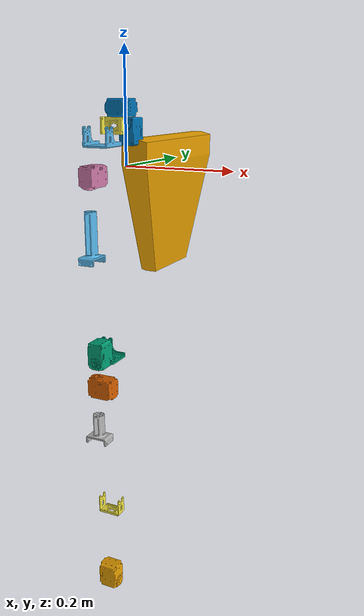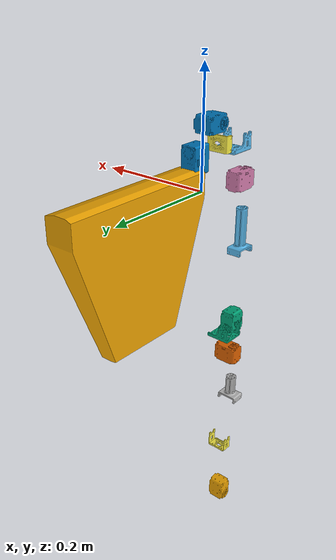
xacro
<?xml version="1.0" ?>
<robot name="humanoid" xmlns:xacro="http://www.ros.org/wiki/xacro">

<link name="base_link">
  <visual>
    <geometry>
      <mesh filename="package://my_robot_description/meshes/base_link.stl" scale="0.001 0.001 0.001"/>
    </geometry>
  </visual>
</link>

<link name="fr12-h104_v1_1">
  <visual>
    <geometry>
      <mesh filename="package://my_robot_description/meshes/fr12-h104_v1_1.stl" scale="0.001 0.001 0.001"/>
    </geometry>
  </visual>
</link>

<link name="fr12-h104_v1_2_1">
  <visual>
    <geometry>
      <mesh filename="package://my_robot_description/meshes/fr12-h104_v1_2_1.stl" scale="0.001 0.001 0.001"/>
    </geometry>
  </visual>
</link>

<link name="fr12_h101_k_v1_1">
  <visual>
    <geometry>
      <mesh filename="package://my_robot_description/meshes/fr12_h101_k_v1_1.stl" scale="0.001 0.001 0.001"/>
    </geometry>
  </visual>
</link>

<link name="Shoulder_Pitch_XM430_1">
  <visual>
    <geometry>
      <mesh filename="package://my_robot_description/meshes/Shoulder_Pitch_XM430_1.stl" scale="0.001 0.001 0.001"/>
    </geometry>
  </visual>
</link>

<link name="Wrist_Yaw_XL430_1">
  <visual>
    <geometry>
      <mesh filename="package://my_robot_description/meshes/Wrist_Yaw_XL430_1.stl" scale="0.001 0.001 0.001"/>
    </geometry>
  </visual>
</link>

<link name="Shoulder_Yaw_XL430_1">
  <visual>
    <geometry>
      <mesh filename="package://my_robot_description/meshes/Shoulder_Yaw_XL430_1.stl" scale="0.001 0.001 0.001"/>
    </geometry>
  </visual>
</link>

<link name="humanoid_robot_arm_v2_lower_arm_conn_1_v2_1">
  <visual>
    <geometry>
      <mesh filename="package://my_robot_description/meshes/humanoid_robot_arm_v2_lower_arm_conn_1_v2_1.stl" scale="0.001 0.001 0.001"/>
    </geometry>
  </visual>
</link>

<link name="Wrist_Pitch_XL430_1">
  <visual>
    <geometry>
      <mesh filename="package://my_robot_description/meshes/Wrist_Pitch_XL430_1.stl" scale="0.001 0.001 0.001"/>
    </geometry>
  </visual>
</link>

<link name="humanoid_robot_arm_v2_lower_arm_conn_2_v2_1">
  <visual>
    <geometry>
      <mesh filename="package://my_robot_description/meshes/humanoid_robot_arm_v2_lower_arm_conn_2_v2_1.stl" scale="0.001 0.001 0.001"/>
    </geometry>
  </visual>
</link>

<link name="Elbow_XL430_1">
  <visual>
    <geometry>
      <mesh filename="package://my_robot_description/meshes/Elbow_XL430_1.stl" scale="0.001 0.001 0.001"/>
    </geometry>
  </visual>
</link>

<link name="fr12_s102_k_v1_1">
  <visual>
    <geometry>
      <mesh filename="package://my_robot_description/meshes/fr12_s102_k_v1_1.stl" scale="0.001 0.001 0.001"/>
    </geometry>
  </visual>
</link>

<link name="Shoulder_Roll_XL430_1">
  <visual>
    <geometry>
      <mesh filename="package://my_robot_description/meshes/Shoulder_Roll_XL430_1.stl" scale="0.001 0.001 0.001"/>
    </geometry>
  </visual>
</link>

<joint name="joint_28" type="continuous">
  <origin xyz="0.002 -0.067 -0.029"/>
  <parent link="Shoulder_Roll_XL430_1"/>
  <child link="fr12-h104_v1_1"/>
  <axis xyz="1 0 0"/>
</joint>

<joint name="joint_30" type="continuous">
  <origin xyz="-0.016138 0.030008 0.021555"/>
  <parent link="Elbow_XL430_1"/>
  <child link="fr12-h104_v1_2_1"/>
  <axis xyz="0 1 0"/>
</joint>

<joint name="joint_34" type="continuous">
  <origin xyz="-0.001612 0.010505 0.169666"/>
  <parent link="Wrist_Pitch_XL430_1"/>
  <child link="fr12_h101_k_v1_1"/>
  <axis xyz="1 0 0"/>
</joint>

<joint name="joint_38" type="fixed">
  <origin xyz="0.0 0.0185 0.035"/>
  <parent link="base_link"/>
  <child link="Shoulder_Pitch_XM430_1"/>
</joint>

<joint name="joint_46" type="fixed">
  <origin xyz="0.000362 -0.018874 -0.029579"/>
  <parent link="fr12-h104_v1_2_1"/>
  <child link="Wrist_Yaw_XL430_1"/>
</joint>

<joint name="joint_47" type="fixed">
  <origin xyz="-0.019 0.000126 -0.0295"/>
  <parent link="fr12-h104_v1_1"/>
  <child link="Shoulder_Yaw_XL430_1"/>
</joint>

<joint name="joint_48" type="continuous">
  <origin xyz="0.000443 0.000154 -0.035997"/>
  <parent link="Wrist_Yaw_XL430_1"/>
  <child link="humanoid_robot_arm_v2_lower_arm_conn_1_v2_1"/>
  <axis xyz="0 0 -1"/>
</joint>

<joint name="joint_49" type="fixed">
  <origin xyz="0.021628 -0.010153 -0.252225"/>
  <parent link="humanoid_robot_arm_v2_lower_arm_conn_1_v2_1"/>
  <child link="Wrist_Pitch_XL430_1"/>
</joint>

<joint name="joint_50" type="continuous">
  <origin xyz="0.0 0.000154 -0.035999"/>
  <parent link="Shoulder_Yaw_XL430_1"/>
  <child link="humanoid_robot_arm_v2_lower_arm_conn_2_v2_1"/>
  <axis xyz="0 0 -1"/>
</joint>

<joint name="joint_51" type="fixed">
  <origin xyz="0.016138 -0.010513 -0.137473"/>
  <parent link="humanoid_robot_arm_v2_lower_arm_conn_2_v2_1"/>
  <child link="Elbow_XL430_1"/>
</joint>

<joint name="joint_52" type="continuous">
  <origin xyz="0.0 -0.0375 0.0"/>
  <parent link="Shoulder_Pitch_XM430_1"/>
  <child link="fr12_s102_k_v1_1"/>
  <axis xyz="0 -1 0"/>
</joint>

<joint name="joint_53" type="fixed">
  <origin xyz="0.017 0.025 0.029"/>
  <parent link="fr12_s102_k_v1_1"/>
  <child link="Shoulder_Roll_XL430_1"/>
</joint>

</robot>
